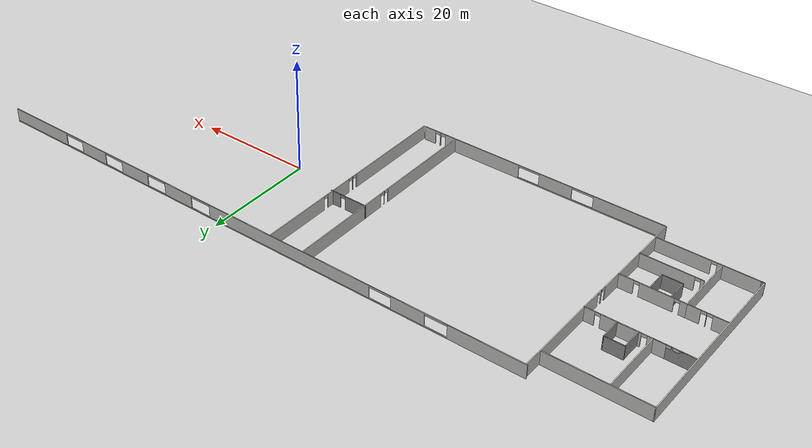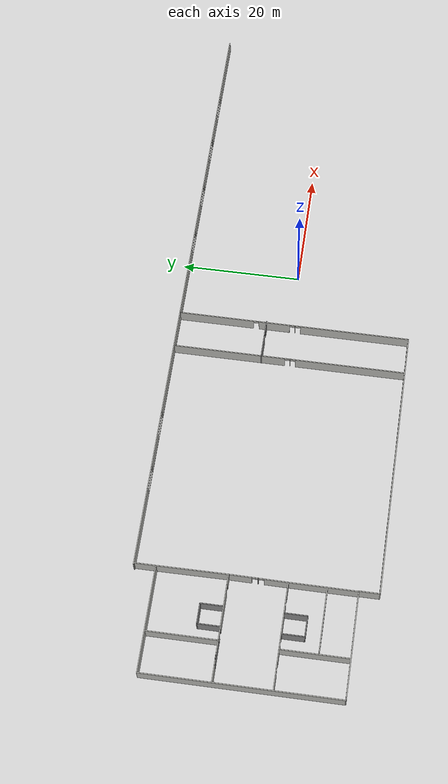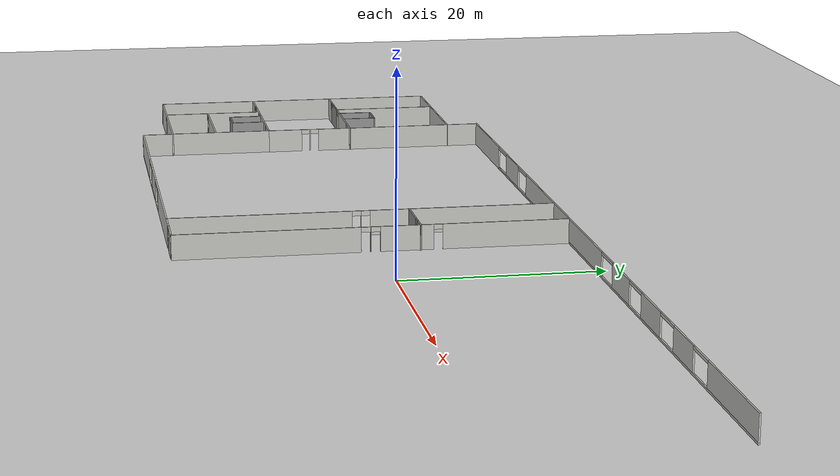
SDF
<sdf version="1.6">
 <world name="default">
  <model name="ground_plane">
   <static>1</static>
   <link name="link">
    <collision name="collision">
     <geometry><plane><normal>0 0 1</normal><size>100 100</size></plane></geometry>
     <surface><friction><ode><mu>100</mu><mu2>50</mu2></ode></friction></surface>
    </collision>
    <visual name="visual">
     <cast_shadows>0</cast_shadows>
     <geometry><plane><normal>0 0 1</normal><size>100 100</size></plane></geometry>
     <material>
      <script><uri>file://media/materials/scripts/gazebo.material</uri><name>Gazebo/Grey</name></script>
     </material>
    </visual>
   </link>
  </model>
  <model name="Erdgeschossen_labor">
   <pose>-4.29246 -0.487524 0 0 -0 0</pose>
   <link name="Wall_0">
    <pose>-0.038053 19.4617 0 0 -0 0</pose>
    <visual name="Wall_0_Visual_0">
     <pose>-45.1164 0 1.25 0 -0 0</pose>
     <geometry><box><size>13.0172 0.15 2.5</size></box></geometry>
     <material>
      <script><uri>file://media/materials/scripts/gazebo.material</uri><name>Gazebo/CeilingTiled</name></script>
      <ambient>1 1 1 1</ambient>
     </material>
    </visual>
    <collision name="Wall_0_Collision_0">
     <geometry><box><size>13.0172 0.15 2.5</size></box></geometry>
     <pose>-45.1164 0 1.25 0 -0 0</pose>
    </collision>
    <visual name="Wall_0_Visual_1">
     <pose>6.50859 0 0.1 0 -0 0</pose>
     <geometry><box><size>90.2328 0.15 0.2</size></box></geometry>
     <material>
      <script><uri>file://media/materials/scripts/gazebo.material</uri><name>Gazebo/CeilingTiled</name></script>
      <ambient>1 1 1 1</ambient>
     </material>
    </visual>
    <collision name="Wall_0_Collision_1">
     <geometry><box><size>90.2328 0.15 0.2</size></box></geometry>
     <pose>6.50859 0 0.1 0 -0 0</pose>
    </collision>
    <visual name="Wall_0_Visual_2">
     <pose>-31.7614 0 1.35 0 -0 0</pose>
     <geometry><box><size>5.93292 0.15 2.3</size></box></geometry>
     <material>
      <script><uri>file://media/materials/scripts/gazebo.material</uri><name>Gazebo/CeilingTiled</name></script>
      <ambient>1 1 1 1</ambient>
     </material>
    </visual>
    <collision name="Wall_0_Collision_2">
     <geometry><box><size>5.93292 0.15 2.3</size></box></geometry>
     <pose>-31.7614 0 1.35 0 -0 0</pose>
    </collision>
    <visual name="Wall_0_Visual_3">
     <pose>-9.24517 0 1.35 0 -0 0</pose>
     <geometry><box><size>31.3395 0.15 2.3</size></box></geometry>
     <material>
      <script><uri>file://media/materials/scripts/gazebo.material</uri><name>Gazebo/CeilingTiled</name></script>
      <ambient>1 1 1 1</ambient>
     </material>
    </visual>
    <collision name="Wall_0_Collision_3">
     <geometry><box><size>31.3395 0.15 2.3</size></box></geometry>
     <pose>-9.24517 0 1.35 0 -0 0</pose>
    </collision>
    <visual name="Wall_0_Visual_4">
     <pose>13.191 0 1.35 0 -0 0</pose>
     <geometry><box><size>5.77285 0.15 2.3</size></box></geometry>
     <material>
      <script><uri>file://media/materials/scripts/gazebo.material</uri><name>Gazebo/CeilingTiled</name></script>
      <ambient>1 1 1 1</ambient>
     </material>
    </visual>
    <collision name="Wall_0_Collision_4">
     <geometry><box><size>5.77285 0.15 2.3</size></box></geometry>
     <pose>13.191 0 1.35 0 -0 0</pose>
    </collision>
    <visual name="Wall_0_Visual_5">
     <pose>22.9057 0 1.35 0 -0 0</pose>
     <geometry><box><size>5.89661 0.15 2.3</size></box></geometry>
     <material>
      <script><uri>file://media/materials/scripts/gazebo.material</uri><name>Gazebo/CeilingTiled</name></script>
      <ambient>1 1 1 1</ambient>
     </material>
    </visual>
    <collision name="Wall_0_Collision_5">
     <geometry><box><size>5.89661 0.15 2.3</size></box></geometry>
     <pose>22.9057 0 1.35 0 -0 0</pose>
    </collision>
    <visual name="Wall_0_Visual_6">
     <pose>32.4967 0 1.35 0 -0 0</pose>
     <geometry><box><size>5.52534 0.15 2.3</size></box></geometry>
     <material>
      <script><uri>file://media/materials/scripts/gazebo.material</uri><name>Gazebo/CeilingTiled</name></script>
      <ambient>1 1 1 1</ambient>
     </material>
    </visual>
    <collision name="Wall_0_Collision_6">
     <geometry><box><size>5.52534 0.15 2.3</size></box></geometry>
     <pose>32.4967 0 1.35 0 -0 0</pose>
    </collision>
    <visual name="Wall_0_Visual_7">
     <pose>45.3822 0 1.35 0 -0 0</pose>
     <geometry><box><size>12.4856 0.15 2.3</size></box></geometry>
     <material>
      <script><uri>file://media/materials/scripts/gazebo.material</uri><name>Gazebo/CeilingTiled</name></script>
      <ambient>1 1 1 1</ambient>
     </material>
    </visual>
    <collision name="Wall_0_Collision_7">
     <geometry><box><size>12.4856 0.15 2.3</size></box></geometry>
     <pose>45.3822 0 1.35 0 -0 0</pose>
    </collision>
    <visual name="Wall_0_Visual_8">
     <pose>-36.6678 0 2.35 0 -0 0</pose>
     <geometry><box><size>3.88 0.15 0.3</size></box></geometry>
     <material>
      <script><uri>file://media/materials/scripts/gazebo.material</uri><name>Gazebo/CeilingTiled</name></script>
      <ambient>1 1 1 1</ambient>
     </material>
    </visual>
    <collision name="Wall_0_Collision_8">
     <geometry><box><size>3.88 0.15 0.3</size></box></geometry>
     <pose>-36.6678 0 2.35 0 -0 0</pose>
    </collision>
    <visual name="Wall_0_Visual_9">
     <pose>-26.8549 0 2.35 0 -0 0</pose>
     <geometry><box><size>3.88 0.15 0.3</size></box></geometry>
     <material>
      <script><uri>file://media/materials/scripts/gazebo.material</uri><name>Gazebo/CeilingTiled</name></script>
      <ambient>1 1 1 1</ambient>
     </material>
    </visual>
    <collision name="Wall_0_Collision_9">
     <geometry><box><size>3.88 0.15 0.3</size></box></geometry>
     <pose>-26.8549 0 2.35 0 -0 0</pose>
    </collision>
    <visual name="Wall_0_Visual_10">
     <pose>8.36458 0 2.35 0 -0 0</pose>
     <geometry><box><size>3.88 0.15 0.3</size></box></geometry>
     <material>
      <script><uri>file://media/materials/scripts/gazebo.material</uri><name>Gazebo/CeilingTiled</name></script>
      <ambient>1 1 1 1</ambient>
     </material>
    </visual>
    <collision name="Wall_0_Collision_10">
     <geometry><box><size>3.88 0.15 0.3</size></box></geometry>
     <pose>8.36458 0 2.35 0 -0 0</pose>
    </collision>
    <visual name="Wall_0_Visual_11">
     <pose>18.0174 0 2.35 0 -0 0</pose>
     <geometry><box><size>3.88 0.15 0.3</size></box></geometry>
     <material>
      <script><uri>file://media/materials/scripts/gazebo.material</uri><name>Gazebo/CeilingTiled</name></script>
      <ambient>1 1 1 1</ambient>
     </material>
    </visual>
    <collision name="Wall_0_Collision_11">
     <geometry><box><size>3.88 0.15 0.3</size></box></geometry>
     <pose>18.0174 0 2.35 0 -0 0</pose>
    </collision>
    <visual name="Wall_0_Visual_12">
     <pose>27.794 0 2.35 0 -0 0</pose>
     <geometry><box><size>3.88 0.15 0.3</size></box></geometry>
     <material>
      <script><uri>file://media/materials/scripts/gazebo.material</uri><name>Gazebo/CeilingTiled</name></script>
      <ambient>1 1 1 1</ambient>
     </material>
    </visual>
    <collision name="Wall_0_Collision_12">
     <geometry><box><size>3.88 0.15 0.3</size></box></geometry>
     <pose>27.794 0 2.35 0 -0 0</pose>
    </collision>
    <visual name="Wall_0_Visual_13">
     <pose>37.1994 0 2.35 0 -0 0</pose>
     <geometry><box><size>3.88 0.15 0.3</size></box></geometry>
     <material>
      <script><uri>file://media/materials/scripts/gazebo.material</uri><name>Gazebo/CeilingTiled</name></script>
      <ambient>1 1 1 1</ambient>
     </material>
    </visual>
    <collision name="Wall_0_Collision_13">
     <geometry><box><size>3.88 0.15 0.3</size></box></geometry>
     <pose>37.1994 0 2.35 0 -0 0</pose>
    </collision>
   </link>
   <link name="Wall_34">
    <pose>-28.875 -19.5188 0 0 -0 3.14159</pose>
    <visual name="Wall_34_Visual_0">
     <pose>-21.4228 0 1.25 0 -0 0</pose>
     <geometry><box><size>2.1544 0.15 2.5</size></box></geometry>
     <material>
      <script><uri>file://media/materials/scripts/gazebo.material</uri><name>Gazebo/CeilingTiled</name></script>
      <ambient>1 1 1 1</ambient>
     </material>
    </visual>
    <collision name="Wall_34_Collision_0">
     <geometry><box><size>2.1544 0.15 2.5</size></box></geometry>
     <pose>-21.4228 0 1.25 0 -0 0</pose>
    </collision>
    <visual name="Wall_34_Visual_1">
     <pose>-19.364 0 1.25 0 -0 0</pose>
     <geometry><box><size>0.163249 0.15 2.5</size></box></geometry>
     <material>
      <script><uri>file://media/materials/scripts/gazebo.material</uri><name>Gazebo/CeilingTiled</name></script>
      <ambient>1 1 1 1</ambient>
     </material>
    </visual>
    <collision name="Wall_34_Collision_1">
     <geometry><box><size>0.163249 0.15 2.5</size></box></geometry>
     <pose>-19.364 0 1.25 0 -0 0</pose>
    </collision>
    <visual name="Wall_34_Visual_2">
     <pose>-11.1612 0 1.25 0 -0 0</pose>
     <geometry><box><size>14.4423 0.15 2.5</size></box></geometry>
     <material>
      <script><uri>file://media/materials/scripts/gazebo.material</uri><name>Gazebo/CeilingTiled</name></script>
      <ambient>1 1 1 1</ambient>
     </material>
    </visual>
    <collision name="Wall_34_Collision_2">
     <geometry><box><size>14.4423 0.15 2.5</size></box></geometry>
     <pose>-11.1612 0 1.25 0 -0 0</pose>
    </collision>
    <visual name="Wall_34_Visual_3">
     <pose>9.27999 0 0.1 0 -0 0</pose>
     <geometry><box><size>26.44 0.15 0.2</size></box></geometry>
     <material>
      <script><uri>file://media/materials/scripts/gazebo.material</uri><name>Gazebo/CeilingTiled</name></script>
      <ambient>1 1 1 1</ambient>
     </material>
    </visual>
    <collision name="Wall_34_Collision_3">
     <geometry><box><size>26.44 0.15 0.2</size></box></geometry>
     <pose>9.27999 0 0.1 0 -0 0</pose>
    </collision>
    <visual name="Wall_34_Visual_4">
     <pose>2.95951 0 1.35 0 -0 0</pose>
     <geometry><box><size>6.03908 0.15 2.3</size></box></geometry>
     <material>
      <script><uri>file://media/materials/scripts/gazebo.material</uri><name>Gazebo/CeilingTiled</name></script>
      <ambient>1 1 1 1</ambient>
     </material>
    </visual>
    <collision name="Wall_34_Collision_4">
     <geometry><box><size>6.03908 0.15 2.3</size></box></geometry>
     <pose>2.95951 0 1.35 0 -0 0</pose>
    </collision>
    <visual name="Wall_34_Visual_5">
     <pose>16.1795 0 1.35 0 -0 0</pose>
     <geometry><box><size>12.641 0.15 2.3</size></box></geometry>
     <material>
      <script><uri>file://media/materials/scripts/gazebo.material</uri><name>Gazebo/CeilingTiled</name></script>
      <ambient>1 1 1 1</ambient>
     </material>
    </visual>
    <collision name="Wall_34_Collision_5">
     <geometry><box><size>12.641 0.15 2.3</size></box></geometry>
     <pose>16.1795 0 1.35 0 -0 0</pose>
    </collision>
    <visual name="Wall_34_Visual_6">
     <pose>-19.8956 0 2.25 0 -0 0</pose>
     <geometry><box><size>0.9 0.15 0.5</size></box></geometry>
     <material>
      <script><uri>file://media/materials/scripts/gazebo.material</uri><name>Gazebo/CeilingTiled</name></script>
      <ambient>1 1 1 1</ambient>
     </material>
    </visual>
    <collision name="Wall_34_Collision_6">
     <geometry><box><size>0.9 0.15 0.5</size></box></geometry>
     <pose>-19.8956 0 2.25 0 -0 0</pose>
    </collision>
    <visual name="Wall_34_Visual_7">
     <pose>-18.8323 0 2.25 0 -0 0</pose>
     <geometry><box><size>0.9 0.15 0.5</size></box></geometry>
     <material>
      <script><uri>file://media/materials/scripts/gazebo.material</uri><name>Gazebo/CeilingTiled</name></script>
      <ambient>1 1 1 1</ambient>
     </material>
    </visual>
    <collision name="Wall_34_Collision_7">
     <geometry><box><size>0.9 0.15 0.5</size></box></geometry>
     <pose>-18.8323 0 2.25 0 -0 0</pose>
    </collision>
    <visual name="Wall_34_Visual_8">
     <pose>-2.00003 0 2.35 0 -0 0</pose>
     <geometry><box><size>3.88 0.15 0.3</size></box></geometry>
     <material>
      <script><uri>file://media/materials/scripts/gazebo.material</uri><name>Gazebo/CeilingTiled</name></script>
      <ambient>1 1 1 1</ambient>
     </material>
    </visual>
    <collision name="Wall_34_Collision_8">
     <geometry><box><size>3.88 0.15 0.3</size></box></geometry>
     <pose>-2.00003 0 2.35 0 -0 0</pose>
    </collision>
    <visual name="Wall_34_Visual_9">
     <pose>7.91905 0 2.35 0 -0 0</pose>
     <geometry><box><size>3.88 0.15 0.3</size></box></geometry>
     <material>
      <script><uri>file://media/materials/scripts/gazebo.material</uri><name>Gazebo/CeilingTiled</name></script>
      <ambient>1 1 1 1</ambient>
     </material>
    </visual>
    <collision name="Wall_34_Collision_9">
     <geometry><box><size>3.88 0.15 0.3</size></box></geometry>
     <pose>7.91905 0 2.35 0 -0 0</pose>
    </collision>
   </link>
   <link name="Wall_35">
    <collision name="Wall_35_Collision">
     <geometry><box><size>3.5 0.15 2.5</size></box></geometry>
     <pose>0 0 1.25 0 -0 0</pose>
    </collision>
    <visual name="Wall_35_Visual">
     <pose>0 0 1.25 0 -0 0</pose>
     <geometry><box><size>3.5 0.15 2.5</size></box></geometry>
     <material>
      <script><uri>file://media/materials/scripts/gazebo.material</uri><name>Gazebo/CeilingTiled</name></script>
      <ambient>1 1 1 1</ambient>
     </material>
    </visual>
    <pose>-51.3 -17.8438 0 0 -0 1.5708</pose>
   </link>
   <link name="Wall_36">
    <pose>-59.725 -16.1688 0 0 -0 3.14159</pose>
    <visual name="Wall_36_Visual_0">
     <pose>-3.88185 0 1.25 0 -0 0</pose>
     <geometry><box><size>9.23631 0.15 2.5</size></box></geometry>
     <material>
      <script><uri>file://media/materials/scripts/gazebo.material</uri><name>Gazebo/CeilingTiled</name></script>
      <ambient>1 1 1 1</ambient>
     </material>
    </visual>
    <collision name="Wall_36_Collision_0">
     <geometry><box><size>9.23631 0.15 2.5</size></box></geometry>
     <pose>-3.88185 0 1.25 0 -0 0</pose>
    </collision>
    <visual name="Wall_36_Visual_1">
     <pose>5.06815 0 1.25 0 -0 0</pose>
     <geometry><box><size>6.86369 0.15 2.5</size></box></geometry>
     <material>
      <script><uri>file://media/materials/scripts/gazebo.material</uri><name>Gazebo/CeilingTiled</name></script>
      <ambient>1 1 1 1</ambient>
     </material>
    </visual>
    <collision name="Wall_36_Collision_1">
     <geometry><box><size>6.86369 0.15 2.5</size></box></geometry>
     <pose>5.06815 0 1.25 0 -0 0</pose>
    </collision>
    <visual name="Wall_36_Visual_2">
     <pose>1.18631 0 2.25 0 -0 0</pose>
     <geometry><box><size>0.9 0.15 0.5</size></box></geometry>
     <material>
      <script><uri>file://media/materials/scripts/gazebo.material</uri><name>Gazebo/CeilingTiled</name></script>
      <ambient>1 1 1 1</ambient>
     </material>
    </visual>
    <collision name="Wall_36_Collision_2">
     <geometry><box><size>0.9 0.15 0.5</size></box></geometry>
     <pose>1.18631 0 2.25 0 -0 0</pose>
    </collision>
   </link>
   <link name="Wall_38">
    <collision name="Wall_38_Collision">
     <geometry><box><size>0.75 0.15 2.5</size></box></geometry>
     <pose>0 0 1.25 0 -0 0</pose>
    </collision>
    <visual name="Wall_38_Visual">
     <pose>0 0 1.25 0 -0 0</pose>
     <geometry><box><size>0.75 0.15 2.5</size></box></geometry>
     <material>
      <script><uri>file://media/materials/scripts/gazebo.material</uri><name>Gazebo/Grey</name></script>
      <ambient>1 1 1 1</ambient>
     </material>
    </visual>
    <pose>-68.45 -16.1688 0 0 -0 3.14159</pose>
   </link>
   <link name="Wall_39">
    <collision name="Wall_39_Collision">
     <geometry><box><size>32.25 0.15 2.5</size></box></geometry>
     <pose>0 0 1.25 0 -0 0</pose>
    </collision>
    <visual name="Wall_39_Visual">
     <pose>0 0 1.25 0 -0 0</pose>
     <geometry><box><size>32.25 0.15 2.5</size></box></geometry>
     <material>
      <script><uri>file://media/materials/scripts/gazebo.material</uri><name>Gazebo/CeilingTiled</name></script>
      <ambient>1 1 1 1</ambient>
     </material>
    </visual>
    <pose>-68.75 -0.118799 0 0 -0 1.5708</pose>
   </link>
   <link name="Wall_40">
    <collision name="Wall_40_Collision">
     <geometry><box><size>17.5 0.15 2.5</size></box></geometry>
     <pose>0 0 1.25 0 -0 0</pose>
    </collision>
    <visual name="Wall_40_Visual">
     <pose>0 0 1.25 0 -0 0</pose>
     <geometry><box><size>17.5 0.15 2.5</size></box></geometry>
     <material>
      <script><uri>file://media/materials/scripts/gazebo.material</uri><name>Gazebo/CeilingTiled</name></script>
      <ambient>1 1 1 1</ambient>
     </material>
    </visual>
    <pose>-60.075 15.9312 0 0 -0 0</pose>
   </link>
   <link name="Wall_41">
    <collision name="Wall_41_Collision">
     <geometry><box><size>3.5 0.15 2.5</size></box></geometry>
     <pose>0 0 1.25 0 -0 0</pose>
    </collision>
    <visual name="Wall_41_Visual">
     <pose>0 0 1.25 0 -0 0</pose>
     <geometry><box><size>3.5 0.15 2.5</size></box></geometry>
     <material>
      <script><uri>file://media/materials/scripts/gazebo.material</uri><name>Gazebo/CeilingTiled</name></script>
      <ambient>1 1 1 1</ambient>
     </material>
    </visual>
    <pose>-51.4 17.6062 0 0 -0 1.5708</pose>
   </link>
   <link name="Wall_43">
    <collision name="Wall_43_Collision">
     <geometry><box><size>11.5 0.15 2.5</size></box></geometry>
     <pose>0 0 1.25 0 -0 0</pose>
    </collision>
    <visual name="Wall_43_Visual">
     <pose>0 0 1.25 0 -0 0</pose>
     <geometry><box><size>11.5 0.15 2.5</size></box></geometry>
     <material>
      <script><uri>file://media/materials/scripts/gazebo.material</uri><name>Gazebo/CeilingTiled</name></script>
      <ambient>1 1 1 1</ambient>
     </material>
    </visual>
    <pose>-62.0601 10.0639 0 0 0 -1.5708</pose>
   </link>
   <link name="Wall_44">
    <collision name="Wall_44_Collision">
     <geometry><box><size>6.75 0.15 2.5</size></box></geometry>
     <pose>0 0 1.25 0 -0 0</pose>
    </collision>
    <visual name="Wall_44_Visual">
     <pose>0 0 1.25 0 -0 0</pose>
     <geometry><box><size>6.75 0.15 2.5</size></box></geometry>
     <material>
      <script><uri>file://media/materials/scripts/gazebo.material</uri><name>Gazebo/Grey</name></script>
      <ambient>1 1 1 1</ambient>
     </material>
    </visual>
    <pose>-65.3601 4.3889 0 0 -0 3.14159</pose>
   </link>
   <link name="Wall_45">
    <pose>-59.9851 4.3889 0 0 -0 0</pose>
    <visual name="Wall_45_Visual_0">
     <pose>-7.39536 0 1.25 0 -0 0</pose>
     <geometry><box><size>2.70929 0.15 2.5</size></box></geometry>
     <material>
      <script><uri>file://media/materials/scripts/gazebo.material</uri><name>Gazebo/CeilingTiled</name></script>
      <ambient>1 1 1 1</ambient>
     </material>
    </visual>
    <collision name="Wall_45_Collision_0">
     <geometry><box><size>2.70929 0.15 2.5</size></box></geometry>
     <pose>-7.39536 0 1.25 0 -0 0</pose>
    </collision>
    <visual name="Wall_45_Visual_1">
     <pose>-5.0588 0 1.25 0 -0 0</pose>
     <geometry><box><size>0.163828 0.15 2.5</size></box></geometry>
     <material>
      <script><uri>file://media/materials/scripts/gazebo.material</uri><name>Gazebo/CeilingTiled</name></script>
      <ambient>1 1 1 1</ambient>
     </material>
    </visual>
    <collision name="Wall_45_Collision_1">
     <geometry><box><size>0.163828 0.15 2.5</size></box></geometry>
     <pose>-5.0588 0 1.25 0 -0 0</pose>
    </collision>
    <visual name="Wall_45_Visual_2">
     <pose>-2.64376 0 1.25 0 -0 0</pose>
     <geometry><box><size>2.86626 0.15 2.5</size></box></geometry>
     <material>
      <script><uri>file://media/materials/scripts/gazebo.material</uri><name>Gazebo/CeilingTiled</name></script>
      <ambient>1 1 1 1</ambient>
     </material>
    </visual>
    <collision name="Wall_45_Collision_2">
     <geometry><box><size>2.86626 0.15 2.5</size></box></geometry>
     <pose>-2.64376 0 1.25 0 -0 0</pose>
    </collision>
    <visual name="Wall_45_Visual_3">
     <pose>2.86545 0 1.25 0 -0 0</pose>
     <geometry><box><size>6.35215 0.15 2.5</size></box></geometry>
     <material>
      <script><uri>file://media/materials/scripts/gazebo.material</uri><name>Gazebo/CeilingTiled</name></script>
      <ambient>1 1 1 1</ambient>
     </material>
    </visual>
    <collision name="Wall_45_Collision_3">
     <geometry><box><size>6.35215 0.15 2.5</size></box></geometry>
     <pose>2.86545 0 1.25 0 -0 0</pose>
    </collision>
    <visual name="Wall_45_Visual_4">
     <pose>7.84576 0 1.25 0 -0 0</pose>
     <geometry><box><size>1.80847 0.15 2.5</size></box></geometry>
     <material>
      <script><uri>file://media/materials/scripts/gazebo.material</uri><name>Gazebo/CeilingTiled</name></script>
      <ambient>1 1 1 1</ambient>
     </material>
    </visual>
    <collision name="Wall_45_Collision_4">
     <geometry><box><size>1.80847 0.15 2.5</size></box></geometry>
     <pose>7.84576 0 1.25 0 -0 0</pose>
    </collision>
    <visual name="Wall_45_Visual_5">
     <pose>-5.59071 0 2.25 0 -0 0</pose>
     <geometry><box><size>0.9 0.15 0.5</size></box></geometry>
     <material>
      <script><uri>file://media/materials/scripts/gazebo.material</uri><name>Gazebo/CeilingTiled</name></script>
      <ambient>1 1 1 1</ambient>
     </material>
    </visual>
    <collision name="Wall_45_Collision_5">
     <geometry><box><size>0.9 0.15 0.5</size></box></geometry>
     <pose>-5.59071 0 2.25 0 -0 0</pose>
    </collision>
    <visual name="Wall_45_Visual_6">
     <pose>-4.52689 0 2.25 0 -0 0</pose>
     <geometry><box><size>0.9 0.15 0.5</size></box></geometry>
     <material>
      <script><uri>file://media/materials/scripts/gazebo.material</uri><name>Gazebo/CeilingTiled</name></script>
      <ambient>1 1 1 1</ambient>
     </material>
    </visual>
    <collision name="Wall_45_Collision_6">
     <geometry><box><size>0.9 0.15 0.5</size></box></geometry>
     <pose>-4.52689 0 2.25 0 -0 0</pose>
    </collision>
    <visual name="Wall_45_Visual_7">
     <pose>-0.760628 0 2.25 0 -0 0</pose>
     <geometry><box><size>0.9 0.15 0.5</size></box></geometry>
     <material>
      <script><uri>file://media/materials/scripts/gazebo.material</uri><name>Gazebo/CeilingTiled</name></script>
      <ambient>1 1 1 1</ambient>
     </material>
    </visual>
    <collision name="Wall_45_Collision_7">
     <geometry><box><size>0.9 0.15 0.5</size></box></geometry>
     <pose>-0.760628 0 2.25 0 -0 0</pose>
    </collision>
    <visual name="Wall_45_Visual_8">
     <pose>6.49153 0 2.25 0 -0 0</pose>
     <geometry><box><size>0.9 0.15 0.5</size></box></geometry>
     <material>
      <script><uri>file://media/materials/scripts/gazebo.material</uri><name>Gazebo/CeilingTiled</name></script>
      <ambient>1 1 1 1</ambient>
     </material>
    </visual>
    <collision name="Wall_45_Collision_8">
     <geometry><box><size>0.9 0.15 0.5</size></box></geometry>
     <pose>6.49153 0 2.25 0 -0 0</pose>
    </collision>
   </link>
   <link name="Wall_46">
    <collision name="Wall_46_Collision">
     <geometry><box><size>11.6927 0.15 2.5</size></box></geometry>
     <pose>0 0 1.25 0 -0 0</pose>
    </collision>
    <visual name="Wall_46_Visual">
     <pose>0 0 1.25 0 -0 0</pose>
     <geometry><box><size>11.6927 0.15 2.5</size></box></geometry>
     <material>
      <script><uri>file://media/materials/scripts/gazebo.material</uri><name>Gazebo/CeilingTiled</name></script>
      <ambient>1 1 1 1</ambient>
     </material>
    </visual>
    <pose>-51.355 10.16 0 0 -0 1.57859</pose>
   </link>
   <link name="Wall_48">
    <pose>-65.3954 -5.06547 0 0 -0 0</pose>
    <visual name="Wall_48_Visual_0">
     <pose>-2.06291 0 1.25 0 -0 0</pose>
     <geometry><box><size>2.37417 0.15 2.5</size></box></geometry>
     <material>
      <script><uri>file://media/materials/scripts/gazebo.material</uri><name>Gazebo/CeilingTiled</name></script>
      <ambient>1 1 1 1</ambient>
     </material>
    </visual>
    <collision name="Wall_48_Collision_0">
     <geometry><box><size>2.37417 0.15 2.5</size></box></geometry>
     <pose>-2.06291 0 1.25 0 -0 0</pose>
    </collision>
    <visual name="Wall_48_Visual_1">
     <pose>0.062759 0 1.25 0 -0 0</pose>
     <geometry><box><size>0.077173 0.15 2.5</size></box></geometry>
     <material>
      <script><uri>file://media/materials/scripts/gazebo.material</uri><name>Gazebo/CeilingTiled</name></script>
      <ambient>1 1 1 1</ambient>
     </material>
    </visual>
    <collision name="Wall_48_Collision_1">
     <geometry><box><size>0.077173 0.15 2.5</size></box></geometry>
     <pose>0.062759 0 1.25 0 -0 0</pose>
    </collision>
    <visual name="Wall_48_Visual_2">
     <pose>2.12567 0 1.25 0 -0 0</pose>
     <geometry><box><size>2.24865 0.15 2.5</size></box></geometry>
     <material>
      <script><uri>file://media/materials/scripts/gazebo.material</uri><name>Gazebo/CeilingTiled</name></script>
      <ambient>1 1 1 1</ambient>
     </material>
    </visual>
    <collision name="Wall_48_Collision_2">
     <geometry><box><size>2.24865 0.15 2.5</size></box></geometry>
     <pose>2.12567 0 1.25 0 -0 0</pose>
    </collision>
    <visual name="Wall_48_Visual_3">
     <pose>-0.425827 0 2.25 0 -0 0</pose>
     <geometry><box><size>0.9 0.15 0.5</size></box></geometry>
     <material>
      <script><uri>file://media/materials/scripts/gazebo.material</uri><name>Gazebo/CeilingTiled</name></script>
      <ambient>1 1 1 1</ambient>
     </material>
    </visual>
    <collision name="Wall_48_Collision_3">
     <geometry><box><size>0.9 0.15 0.5</size></box></geometry>
     <pose>-0.425827 0 2.25 0 -0 0</pose>
    </collision>
    <visual name="Wall_48_Visual_4">
     <pose>0.551346 0 2.25 0 -0 0</pose>
     <geometry><box><size>0.9 0.15 0.5</size></box></geometry>
     <material>
      <script><uri>file://media/materials/scripts/gazebo.material</uri><name>Gazebo/CeilingTiled</name></script>
      <ambient>1 1 1 1</ambient>
     </material>
    </visual>
    <collision name="Wall_48_Collision_4">
     <geometry><box><size>0.9 0.15 0.5</size></box></geometry>
     <pose>0.551346 0 2.25 0 -0 0</pose>
    </collision>
   </link>
   <link name="Wall_49">
    <collision name="Wall_49_Collision">
     <geometry><box><size>11.25 0.15 2.5</size></box></geometry>
     <pose>0 0 1.25 0 -0 0</pose>
    </collision>
    <visual name="Wall_49_Visual">
     <pose>0 0 1.25 0 -0 0</pose>
     <geometry><box><size>11.25 0.15 2.5</size></box></geometry>
     <material>
      <script><uri>file://media/materials/scripts/gazebo.material</uri><name>Gazebo/CeilingTiled</name></script>
      <ambient>1 1 1 1</ambient>
     </material>
    </visual>
    <pose>-62.2205 -10.6155 0 0 0 -1.5708</pose>
   </link>
   <link name="Wall_52">
    <pose>-56.7954 -5.06547 0 0 -0 0</pose>
    <visual name="Wall_52_Visual_0">
     <pose>-4.94911 0 1.25 0 -0 0</pose>
     <geometry><box><size>1.10179 0.15 2.5</size></box></geometry>
     <material>
      <script><uri>file://media/materials/scripts/gazebo.material</uri><name>Gazebo/CeilingTiled</name></script>
      <ambient>1 1 1 1</ambient>
     </material>
    </visual>
    <collision name="Wall_52_Collision_0">
     <geometry><box><size>1.10179 0.15 2.5</size></box></geometry>
     <pose>-4.94911 0 1.25 0 -0 0</pose>
    </collision>
    <visual name="Wall_52_Visual_1">
     <pose>-0.746063 0 1.25 0 -0 0</pose>
     <geometry><box><size>5.5043 0.15 2.5</size></box></geometry>
     <material>
      <script><uri>file://media/materials/scripts/gazebo.material</uri><name>Gazebo/CeilingTiled</name></script>
      <ambient>1 1 1 1</ambient>
     </material>
    </visual>
    <collision name="Wall_52_Collision_1">
     <geometry><box><size>5.5043 0.15 2.5</size></box></geometry>
     <pose>-0.746063 0 1.25 0 -0 0</pose>
    </collision>
    <visual name="Wall_52_Visual_2">
     <pose>4.20304 0 1.25 0 -0 0</pose>
     <geometry><box><size>2.59391 0.15 2.5</size></box></geometry>
     <material>
      <script><uri>file://media/materials/scripts/gazebo.material</uri><name>Gazebo/CeilingTiled</name></script>
      <ambient>1 1 1 1</ambient>
     </material>
    </visual>
    <collision name="Wall_52_Collision_2">
     <geometry><box><size>2.59391 0.15 2.5</size></box></geometry>
     <pose>4.20304 0 1.25 0 -0 0</pose>
    </collision>
    <visual name="Wall_52_Visual_3">
     <pose>-3.94821 0 2.25 0 -0 0</pose>
     <geometry><box><size>0.9 0.15 0.5</size></box></geometry>
     <material>
      <script><uri>file://media/materials/scripts/gazebo.material</uri><name>Gazebo/CeilingTiled</name></script>
      <ambient>1 1 1 1</ambient>
     </material>
    </visual>
    <collision name="Wall_52_Collision_3">
     <geometry><box><size>0.9 0.15 0.5</size></box></geometry>
     <pose>-3.94821 0 2.25 0 -0 0</pose>
    </collision>
    <visual name="Wall_52_Visual_4">
     <pose>2.45608 0 2.25 0 -0 0</pose>
     <geometry><box><size>0.9 0.15 0.5</size></box></geometry>
     <material>
      <script><uri>file://media/materials/scripts/gazebo.material</uri><name>Gazebo/CeilingTiled</name></script>
      <ambient>1 1 1 1</ambient>
     </material>
    </visual>
    <collision name="Wall_52_Collision_4">
     <geometry><box><size>0.9 0.15 0.5</size></box></geometry>
     <pose>2.45608 0 2.25 0 -0 0</pose>
    </collision>
   </link>
   <link name="Wall_53">
    <collision name="Wall_53_Collision">
     <geometry><box><size>11.25 0.15 2.5</size></box></geometry>
     <pose>0 0 1.25 0 -0 0</pose>
    </collision>
    <visual name="Wall_53_Visual">
     <pose>0 0 1.25 0 -0 0</pose>
     <geometry><box><size>11.25 0.15 2.5</size></box></geometry>
     <material>
      <script><uri>file://media/materials/scripts/gazebo.material</uri><name>Gazebo/CeilingTiled</name></script>
      <ambient>1 1 1 1</ambient>
     </material>
    </visual>
    <pose>-51.3704 -10.6155 0 0 0 -1.5708</pose>
   </link>
   <link name="Wall_65">
    <pose>-6.08049 -0.04426 0 0 0 -1.5708</pose>
    <visual name="Wall_65_Visual_0">
     <pose>-13.1836 0 1.25 0 -0 0</pose>
     <geometry><box><size>12.6328 0.15 2.5</size></box></geometry>
     <material>
      <script><uri>file://media/materials/scripts/gazebo.material</uri><name>Gazebo/CeilingTiled</name></script>
      <ambient>1 1 1 1</ambient>
     </material>
    </visual>
    <collision name="Wall_65_Collision_0">
     <geometry><box><size>12.6328 0.15 2.5</size></box></geometry>
     <pose>-13.1836 0 1.25 0 -0 0</pose>
    </collision>
    <visual name="Wall_65_Visual_1">
     <pose>-3.34788 0 1.25 0 -0 0</pose>
     <geometry><box><size>5.23866 0.15 2.5</size></box></geometry>
     <material>
      <script><uri>file://media/materials/scripts/gazebo.material</uri><name>Gazebo/CeilingTiled</name></script>
      <ambient>1 1 1 1</ambient>
     </material>
    </visual>
    <collision name="Wall_65_Collision_1">
     <geometry><box><size>5.23866 0.15 2.5</size></box></geometry>
     <pose>-3.34788 0 1.25 0 -0 0</pose>
    </collision>
    <visual name="Wall_65_Visual_2">
     <pose>0.209673 0 1.25 0 -0 0</pose>
     <geometry><box><size>0.076447 0.15 2.5</size></box></geometry>
     <material>
      <script><uri>file://media/materials/scripts/gazebo.material</uri><name>Gazebo/CeilingTiled</name></script>
      <ambient>1 1 1 1</ambient>
     </material>
    </visual>
    <collision name="Wall_65_Collision_2">
     <geometry><box><size>0.076447 0.15 2.5</size></box></geometry>
     <pose>0.209673 0 1.25 0 -0 0</pose>
    </collision>
    <visual name="Wall_65_Visual_3">
     <pose>10.3239 0 1.25 0 -0 0</pose>
     <geometry><box><size>18.3521 0.15 2.5</size></box></geometry>
     <material>
      <script><uri>file://media/materials/scripts/gazebo.material</uri><name>Gazebo/CeilingTiled</name></script>
      <ambient>1 1 1 1</ambient>
     </material>
    </visual>
    <collision name="Wall_65_Collision_3">
     <geometry><box><size>18.3521 0.15 2.5</size></box></geometry>
     <pose>10.3239 0 1.25 0 -0 0</pose>
    </collision>
    <visual name="Wall_65_Visual_4">
     <pose>-6.41721 0 2.25 0 -0 0</pose>
     <geometry><box><size>0.9 0.15 0.5</size></box></geometry>
     <material>
      <script><uri>file://media/materials/scripts/gazebo.material</uri><name>Gazebo/CeilingTiled</name></script>
      <ambient>1 1 1 1</ambient>
     </material>
    </visual>
    <collision name="Wall_65_Collision_4">
     <geometry><box><size>0.9 0.15 0.5</size></box></geometry>
     <pose>-6.41721 0 2.25 0 -0 0</pose>
    </collision>
    <visual name="Wall_65_Visual_5">
     <pose>-0.27855 0 2.25 0 -0 0</pose>
     <geometry><box><size>0.9 0.15 0.5</size></box></geometry>
     <material>
      <script><uri>file://media/materials/scripts/gazebo.material</uri><name>Gazebo/CeilingTiled</name></script>
      <ambient>1 1 1 1</ambient>
     </material>
    </visual>
    <collision name="Wall_65_Collision_5">
     <geometry><box><size>0.9 0.15 0.5</size></box></geometry>
     <pose>-0.27855 0 2.25 0 -0 0</pose>
    </collision>
    <visual name="Wall_65_Visual_6">
     <pose>0.697897 0 2.25 0 -0 0</pose>
     <geometry><box><size>0.9 0.15 0.5</size></box></geometry>
     <material>
      <script><uri>file://media/materials/scripts/gazebo.material</uri><name>Gazebo/CeilingTiled</name></script>
      <ambient>1 1 1 1</ambient>
     </material>
    </visual>
    <collision name="Wall_65_Collision_6">
     <geometry><box><size>0.9 0.15 0.5</size></box></geometry>
     <pose>0.697897 0 2.25 0 -0 0</pose>
    </collision>
   </link>
   <link name="Wall_67">
    <pose>-12.4634 -0.04426 0 0 0 -1.5708</pose>
    <visual name="Wall_67_Visual_0">
     <pose>-10.1143 0 1.25 0 -0 0</pose>
     <geometry><box><size>18.7715 0.15 2.5</size></box></geometry>
     <material>
      <script><uri>file://media/materials/scripts/gazebo.material</uri><name>Gazebo/CeilingTiled</name></script>
      <ambient>1 1 1 1</ambient>
     </material>
    </visual>
    <collision name="Wall_67_Collision_0">
     <geometry><box><size>18.7715 0.15 2.5</size></box></geometry>
     <pose>-10.1143 0 1.25 0 -0 0</pose>
    </collision>
    <visual name="Wall_67_Visual_1">
     <pose>0.189331 0 1.25 0 -0 0</pose>
     <geometry><box><size>0.035762 0.15 2.5</size></box></geometry>
     <material>
      <script><uri>file://media/materials/scripts/gazebo.material</uri><name>Gazebo/CeilingTiled</name></script>
      <ambient>1 1 1 1</ambient>
     </material>
    </visual>
    <collision name="Wall_67_Collision_1">
     <geometry><box><size>0.035762 0.15 2.5</size></box></geometry>
     <pose>0.189331 0 1.25 0 -0 0</pose>
    </collision>
    <visual name="Wall_67_Visual_2">
     <pose>10.3036 0 1.25 0 -0 0</pose>
     <geometry><box><size>18.3928 0.15 2.5</size></box></geometry>
     <material>
      <script><uri>file://media/materials/scripts/gazebo.material</uri><name>Gazebo/CeilingTiled</name></script>
      <ambient>1 1 1 1</ambient>
     </material>
    </visual>
    <collision name="Wall_67_Collision_2">
     <geometry><box><size>18.3928 0.15 2.5</size></box></geometry>
     <pose>10.3036 0 1.25 0 -0 0</pose>
    </collision>
    <visual name="Wall_67_Visual_3">
     <pose>-0.27855 0 2.25 0 -0 0</pose>
     <geometry><box><size>0.9 0.15 0.5</size></box></geometry>
     <material>
      <script><uri>file://media/materials/scripts/gazebo.material</uri><name>Gazebo/CeilingTiled</name></script>
      <ambient>1 1 1 1</ambient>
     </material>
    </visual>
    <collision name="Wall_67_Collision_3">
     <geometry><box><size>0.9 0.15 0.5</size></box></geometry>
     <pose>-0.27855 0 2.25 0 -0 0</pose>
    </collision>
    <visual name="Wall_67_Visual_4">
     <pose>0.657212 0 2.25 0 -0 0</pose>
     <geometry><box><size>0.9 0.15 0.5</size></box></geometry>
     <material>
      <script><uri>file://media/materials/scripts/gazebo.material</uri><name>Gazebo/CeilingTiled</name></script>
      <ambient>1 1 1 1</ambient>
     </material>
    </visual>
    <collision name="Wall_67_Collision_4">
     <geometry><box><size>0.9 0.15 0.5</size></box></geometry>
     <pose>0.657212 0 2.25 0 -0 0</pose>
    </collision>
   </link>
   <link name="Wall_69">
    <pose>-56.5649 -11.2235 0 0 -0 0</pose>
    <visual name="Wall_69_Visual_0">
     <pose>-4.97497 0 1.25 0 -0 0</pose>
     <geometry><box><size>0.550069 0.15 2.5</size></box></geometry>
     <material>
      <script><uri>file://media/materials/scripts/gazebo.material</uri><name>Gazebo/CeilingTiled</name></script>
      <ambient>1 1 1 1</ambient>
     </material>
    </visual>
    <collision name="Wall_69_Collision_0">
     <geometry><box><size>0.550069 0.15 2.5</size></box></geometry>
     <pose>-4.97497 0 1.25 0 -0 0</pose>
    </collision>
    <visual name="Wall_69_Visual_1">
     <pose>0.725034 0 1.25 0 -0 0</pose>
     <geometry><box><size>9.04993 0.15 2.5</size></box></geometry>
     <material>
      <script><uri>file://media/materials/scripts/gazebo.material</uri><name>Gazebo/CeilingTiled</name></script>
      <ambient>1 1 1 1</ambient>
     </material>
    </visual>
    <collision name="Wall_69_Collision_1">
     <geometry><box><size>9.04993 0.15 2.5</size></box></geometry>
     <pose>0.725034 0 1.25 0 -0 0</pose>
    </collision>
    <visual name="Wall_69_Visual_2">
     <pose>-4.24993 0 2.25 0 -0 0</pose>
     <geometry><box><size>0.9 0.15 0.5</size></box></geometry>
     <material>
      <script><uri>file://media/materials/scripts/gazebo.material</uri><name>Gazebo/CeilingTiled</name></script>
      <ambient>1 1 1 1</ambient>
     </material>
    </visual>
    <collision name="Wall_69_Collision_2">
     <geometry><box><size>0.9 0.15 0.5</size></box></geometry>
     <pose>-4.24993 0 2.25 0 -0 0</pose>
    </collision>
   </link>
   <link name="Wall_71">
    <pose>-51.3403 -0.338288 0 0 0 -1.57718</pose>
    <visual name="Wall_71_Visual_0">
     <pose>-2.91624 0 1.25 0 -0 0</pose>
     <geometry><box><size>3.77207 0.15 2.5</size></box></geometry>
     <material>
      <script><uri>file://media/materials/scripts/gazebo.material</uri><name>Gazebo/CeilingTiled</name></script>
      <ambient>1 1 1 1</ambient>
     </material>
    </visual>
    <collision name="Wall_71_Collision_0">
     <geometry><box><size>3.77207 0.15 2.5</size></box></geometry>
     <pose>-2.91624 0 1.25 0 -0 0</pose>
    </collision>
    <visual name="Wall_71_Visual_1">
     <pose>-0.065252 0 1.25 0 -0 0</pose>
     <geometry><box><size>0.129915 0.15 2.5</size></box></geometry>
     <material>
      <script><uri>file://media/materials/scripts/gazebo.material</uri><name>Gazebo/CeilingTiled</name></script>
      <ambient>1 1 1 1</ambient>
     </material>
    </visual>
    <collision name="Wall_71_Collision_1">
     <geometry><box><size>0.129915 0.15 2.5</size></box></geometry>
     <pose>-0.065252 0 1.25 0 -0 0</pose>
    </collision>
    <visual name="Wall_71_Visual_2">
     <pose>2.85099 0 1.25 0 -0 0</pose>
     <geometry><box><size>3.90258 0.15 2.5</size></box></geometry>
     <material>
      <script><uri>file://media/materials/scripts/gazebo.material</uri><name>Gazebo/CeilingTiled</name></script>
      <ambient>1 1 1 1</ambient>
     </material>
    </visual>
    <collision name="Wall_71_Collision_2">
     <geometry><box><size>3.90258 0.15 2.5</size></box></geometry>
     <pose>2.85099 0 1.25 0 -0 0</pose>
    </collision>
    <visual name="Wall_71_Visual_3">
     <pose>-0.58021 0 2.25 0 -0 0</pose>
     <geometry><box><size>0.9 0.15 0.5</size></box></geometry>
     <material>
      <script><uri>file://media/materials/scripts/gazebo.material</uri><name>Gazebo/CeilingTiled</name></script>
      <ambient>1 1 1 1</ambient>
     </material>
    </visual>
    <collision name="Wall_71_Collision_3">
     <geometry><box><size>0.9 0.15 0.5</size></box></geometry>
     <pose>-0.58021 0 2.25 0 -0 0</pose>
    </collision>
    <visual name="Wall_71_Visual_4">
     <pose>0.449705 0 2.25 0 -0 0</pose>
     <geometry><box><size>0.9 0.15 0.5</size></box></geometry>
     <material>
      <script><uri>file://media/materials/scripts/gazebo.material</uri><name>Gazebo/CeilingTiled</name></script>
      <ambient>1 1 1 1</ambient>
     </material>
    </visual>
    <collision name="Wall_71_Collision_4">
     <geometry><box><size>0.9 0.15 0.5</size></box></geometry>
     <pose>0.449705 0 2.25 0 -0 0</pose>
    </collision>
   </link>
   <link name="Wall_89">
    <collision name="Wall_89_Collision">
     <geometry><box><size>3.75 0.15 2.5</size></box></geometry>
     <pose>0 0 1.25 0 -0 0</pose>
    </collision>
    <visual name="Wall_89_Visual">
     <pose>0 0 1.25 0 -0 0</pose>
     <geometry><box><size>3.75 0.15 2.5</size></box></geometry>
     <material>
      <script><uri>file://media/materials/scripts/gazebo.material</uri><name>Gazebo/Grey</name></script>
      <ambient>1 1 1 1</ambient>
     </material>
    </visual>
    <pose>-56.5536 6.29348 0 0 -0 1.5708</pose>
   </link>
   <link name="Wall_90">
    <collision name="Wall_90_Collision">
     <geometry><box><size>3.45348 0.15 2.5</size></box></geometry>
     <pose>0 0 1.25 0 -0 0</pose>
    </collision>
    <visual name="Wall_90_Visual">
     <pose>0 0 1.25 0 -0 0</pose>
     <geometry><box><size>3.45348 0.15 2.5</size></box></geometry>
     <material>
      <script><uri>file://media/materials/scripts/gazebo.material</uri><name>Gazebo/Grey</name></script>
      <ambient>1 1 1 1</ambient>
     </material>
    </visual>
    <pose>-58.2053 8.09348 0 0 -0 3.14159</pose>
   </link>
   <link name="Wall_93">
    <collision name="Wall_93_Collision">
     <geometry><box><size>3.75 0.15 2.5</size></box></geometry>
     <pose>0 0 1.25 0 -0 0</pose>
    </collision>
    <visual name="Wall_93_Visual">
     <pose>0 0 1.25 0 -0 0</pose>
     <geometry><box><size>3.75 0.15 2.5</size></box></geometry>
     <material>
      <script><uri>file://media/materials/scripts/gazebo.material</uri><name>Gazebo/Grey</name></script>
      <ambient>1 1 1 1</ambient>
     </material>
    </visual>
    <pose>-59.857 6.29348 0 0 0 -1.5708</pose>
   </link>
   <link name="Wall_95">
    <collision name="Wall_95_Collision">
     <geometry><box><size>3.75 0.15 2.5</size></box></geometry>
     <pose>0 0 1.25 0 -0 0</pose>
    </collision>
    <visual name="Wall_95_Visual">
     <pose>0 0 1.25 0 -0 0</pose>
     <geometry><box><size>3.75 0.15 2.5</size></box></geometry>
     <material>
      <script><uri>file://media/materials/scripts/gazebo.material</uri><name>Gazebo/Grey</name></script>
      <ambient>1 1 1 1</ambient>
     </material>
    </visual>
    <pose>-59.7289 -6.94974 0 0 0 -1.5708</pose>
   </link>
   <link name="Wall_96">
    <collision name="Wall_96_Collision">
     <geometry><box><size>3.5 0.15 2.5</size></box></geometry>
     <pose>0 0 1.25 0 -0 0</pose>
    </collision>
    <visual name="Wall_96_Visual">
     <pose>0 0 1.25 0 -0 0</pose>
     <geometry><box><size>3.5 0.15 2.5</size></box></geometry>
     <material>
      <script><uri>file://media/materials/scripts/gazebo.material</uri><name>Gazebo/Grey</name></script>
      <ambient>1 1 1 1</ambient>
     </material>
    </visual>
    <pose>-58.0539 -8.74974 0 0 -0 0</pose>
   </link>
   <link name="Wall_97">
    <collision name="Wall_97_Collision">
     <geometry><box><size>3.75 0.15 2.5</size></box></geometry>
     <pose>0 0 1.25 0 -0 0</pose>
    </collision>
    <visual name="Wall_97_Visual">
     <pose>0 0 1.25 0 -0 0</pose>
     <geometry><box><size>3.75 0.15 2.5</size></box></geometry>
     <material>
      <script><uri>file://media/materials/scripts/gazebo.material</uri><name>Gazebo/Grey</name></script>
      <ambient>1 1 1 1</ambient>
     </material>
    </visual>
    <pose>-56.3789 -6.94974 0 0 -0 1.5708</pose>
   </link>
   <link name="Wall_99">
    <pose>-9.18571 4.64092 0 0 -0 3.14159</pose>
    <visual name="Wall_99_Visual_0">
     <pose>-2.43959 0 1.25 0 -0 0</pose>
     <geometry><box><size>1.87083 0.15 2.5</size></box></geometry>
     <material>
      <script><uri>file://media/materials/scripts/gazebo.material</uri><name>Gazebo/Grey</name></script>
      <ambient>1 1 1 1</ambient>
     </material>
    </visual>
    <collision name="Wall_99_Collision_0">
     <geometry><box><size>1.87083 0.15 2.5</size></box></geometry>
     <pose>-2.43959 0 1.25 0 -0 0</pose>
    </collision>
    <visual name="Wall_99_Visual_1">
     <pose>1.38542 0 1.25 0 -0 0</pose>
     <geometry><box><size>3.97917 0.15 2.5</size></box></geometry>
     <material>
      <script><uri>file://media/materials/scripts/gazebo.material</uri><name>Gazebo/Grey</name></script>
      <ambient>1 1 1 1</ambient>
     </material>
    </visual>
    <collision name="Wall_99_Collision_1">
     <geometry><box><size>3.97917 0.15 2.5</size></box></geometry>
     <pose>1.38542 0 1.25 0 -0 0</pose>
    </collision>
    <visual name="Wall_99_Visual_2">
     <pose>-1.05417 0 2.25 0 -0 0</pose>
     <geometry><box><size>0.9 0.15 0.5</size></box></geometry>
     <material>
      <script><uri>file://media/materials/scripts/gazebo.material</uri><name>Gazebo/Grey</name></script>
      <ambient>1 1 1 1</ambient>
     </material>
    </visual>
    <collision name="Wall_99_Collision_2">
     <geometry><box><size>0.9 0.15 0.5</size></box></geometry>
     <pose>-1.05417 0 2.25 0 -0 0</pose>
    </collision>
   </link>
   <static>1</static>
  </model>
 </world>
</sdf>
